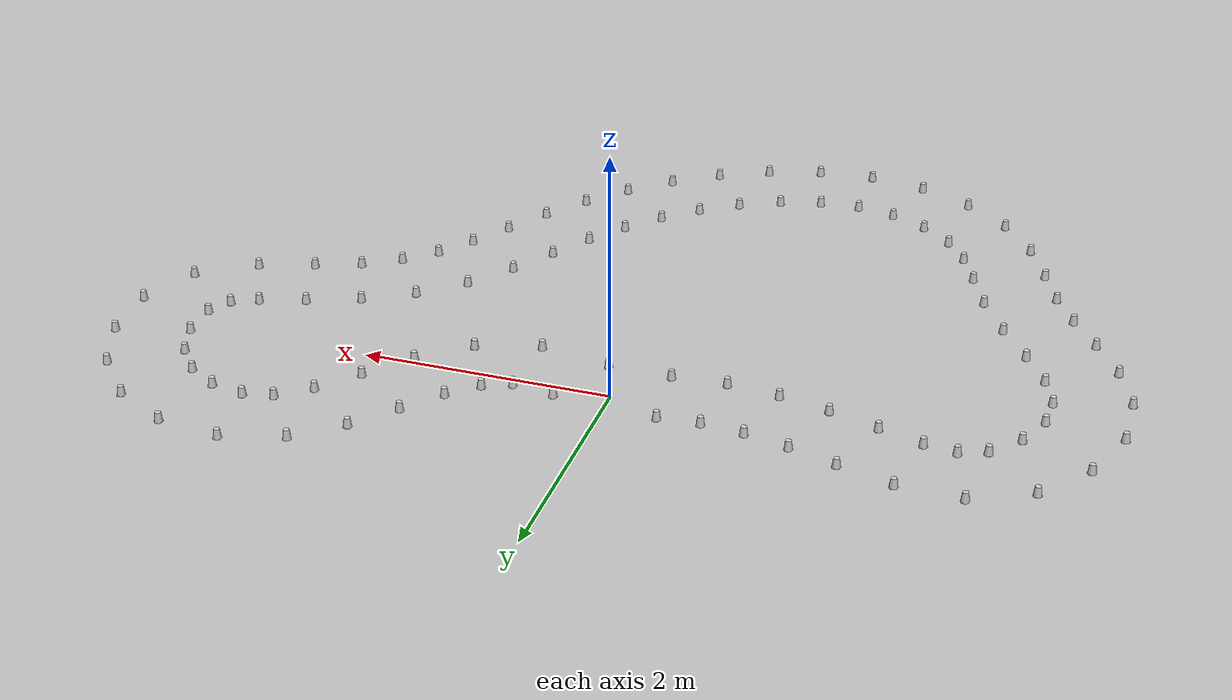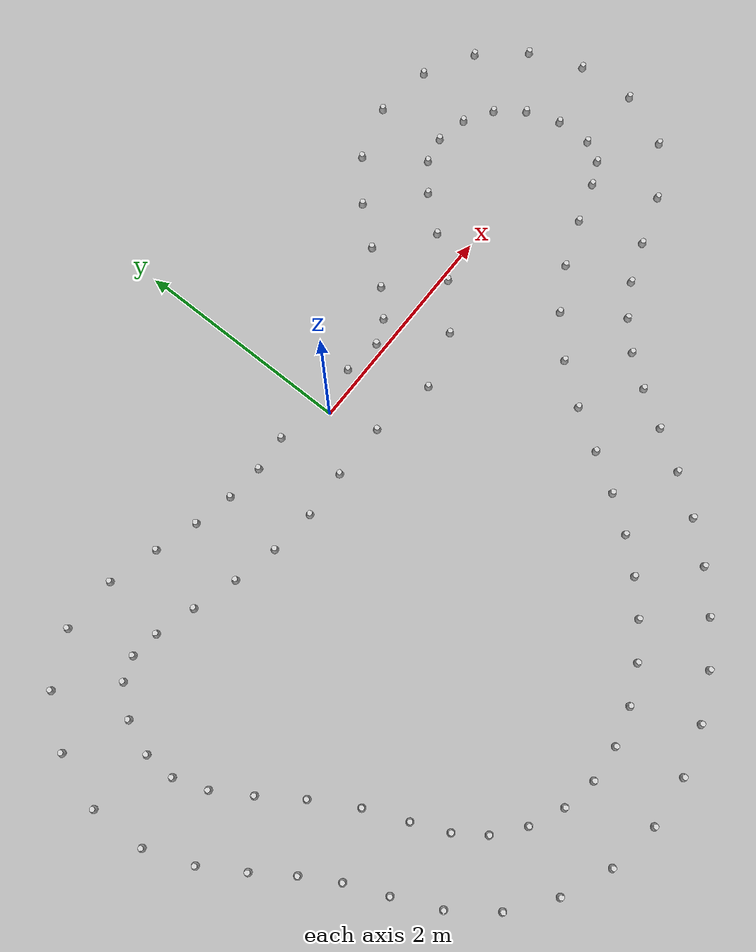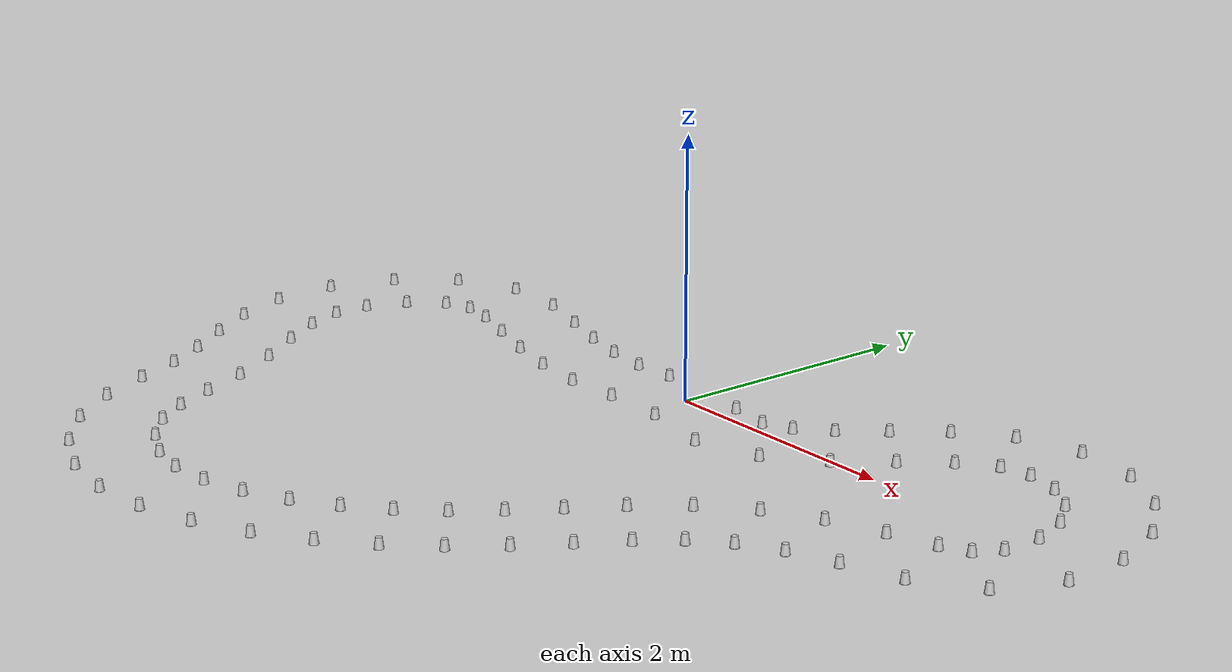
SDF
<?xml version='1.0' encoding='UTF-8'?>
<sdf version="1.4">
  <model name="some track">
    <include>
      <uri>model://cone_yellow</uri>
      <pose>0.143906361225212 -0.4063504289098119 0 0 0 0</pose>
      <name>cone_right_0</name>
    </include>
    <include>
      <uri>model://cone_yellow</uri>
      <pose>0.7252550191728679 -0.5163491527340748 0 0 0 0</pose>
      <name>cone_right_1</name>
    </include>
    <include>
      <uri>model://cone_yellow</uri>
      <pose>1.2338307954432028 -0.36205496815890725 0 0 0 0</pose>
      <name>cone_right_2</name>
    </include>
    <include>
      <uri>model://cone_yellow</uri>
      <pose>1.6132581498075276 -0.04741672740075617 0 0 0 0</pose>
      <name>cone_right_3</name>
    </include>
    <include>
      <uri>model://cone_yellow</uri>
      <pose>1.9049513947438668 0.3016925719426058 0 0 0 0</pose>
      <name>cone_right_4</name>
    </include>
    <include>
      <uri>model://cone_yellow</uri>
      <pose>2.1634687116267663 0.6070886082128363 0 0 0 0</pose>
      <name>cone_right_5</name>
    </include>
    <include>
      <uri>model://cone_yellow</uri>
      <pose>2.410032340920633 0.8006139180482856 0 0 0 0</pose>
      <name>cone_right_6</name>
    </include>
    <include>
      <uri>model://cone_yellow</uri>
      <pose>2.649172144502708 0.8504961250035453 0 0 0 0</pose>
      <name>cone_right_7</name>
    </include>
    <include>
      <uri>model://cone_yellow</uri>
      <pose>2.9284967679740856 0.7914116312535276 0 0 0 0</pose>
      <name>cone_right_8</name>
    </include>
    <include>
      <uri>model://cone_yellow</uri>
      <pose>3.1771722231018984 0.6340403422597343 0 0 0 0</pose>
      <name>cone_right_9</name>
    </include>
    <include>
      <uri>model://cone_yellow</uri>
      <pose>3.3615954567788147 0.3955062309610082 0 0 0 0</pose>
      <name>cone_right_10</name>
    </include>
    <include>
      <uri>model://cone_yellow</uri>
      <pose>3.4661773612914986 0.09336122798093767 0 0 0 0</pose>
      <name>cone_right_11</name>
    </include>
    <include>
      <uri>model://cone_yellow</uri>
      <pose>3.4672003118674075 -0.2234639536872096 0 0 0 0</pose>
      <name>cone_right_12</name>
    </include>
    <include>
      <uri>model://cone_yellow</uri>
      <pose>3.3606896926855767 -0.40970543667685266 0 0 0 0</pose>
      <name>cone_right_13</name>
    </include>
    <include>
      <uri>model://cone_yellow</uri>
      <pose>3.1545931990922456 -0.5072070508394486 0 0 0 0</pose>
      <name>cone_right_14</name>
    </include>
    <include>
      <uri>model://cone_yellow</uri>
      <pose>2.7937587495255682 -0.6244593696290632 0 0 0 0</pose>
      <name>cone_right_15</name>
    </include>
    <include>
      <uri>model://cone_yellow</uri>
      <pose>2.3768695214635205 -0.7846363516811127 0 0 0 0</pose>
      <name>cone_right_16</name>
    </include>
    <include>
      <uri>model://cone_yellow</uri>
      <pose>1.9908284437814336 -1.0091160632830367 0 0 0 0</pose>
      <name>cone_right_17</name>
    </include>
    <include>
      <uri>model://cone_yellow</uri>
      <pose>1.6565899778700544 -1.3066835321676893 0 0 0 0</pose>
      <name>cone_right_18</name>
    </include>
    <include>
      <uri>model://cone_yellow</uri>
      <pose>1.38800355440488 -1.6552293929657196 0 0 0 0</pose>
      <name>cone_right_19</name>
    </include>
    <include>
      <uri>model://cone_yellow</uri>
      <pose>1.1645142889257343 -2.009456875996536 0 0 0 0</pose>
      <name>cone_right_20</name>
    </include>
    <include>
      <uri>model://cone_yellow</uri>
      <pose>0.9538891619624759 -2.340444916902986 0 0 0 0</pose>
      <name>cone_right_21</name>
    </include>
    <include>
      <uri>model://cone_yellow</uri>
      <pose>0.7316377618229593 -2.6398098019115626 0 0 0 0</pose>
      <name>cone_right_22</name>
    </include>
    <include>
      <uri>model://cone_yellow</uri>
      <pose>0.48739442011282774 -2.910907353488579 0 0 0 0</pose>
      <name>cone_right_23</name>
    </include>
    <include>
      <uri>model://cone_yellow</uri>
      <pose>0.21654871029993203 -3.150676162661842 0 0 0 0</pose>
      <name>cone_right_24</name>
    </include>
    <include>
      <uri>model://cone_yellow</uri>
      <pose>-0.08568806253069187 -3.3561846444365813 0 0 0 0</pose>
      <name>cone_right_25</name>
    </include>
    <include>
      <uri>model://cone_yellow</uri>
      <pose>-0.4136555638080574 -3.5164730187376123 0 0 0 0</pose>
      <name>cone_right_26</name>
    </include>
    <include>
      <uri>model://cone_yellow</uri>
      <pose>-0.7515534650550733 -3.615035278396277 0 0 0 0</pose>
      <name>cone_right_27</name>
    </include>
    <include>
      <uri>model://cone_yellow</uri>
      <pose>-1.0839328186080273 -3.63875598737612 0 0 0 0</pose>
      <name>cone_right_28</name>
    </include>
    <include>
      <uri>model://cone_yellow</uri>
      <pose>-1.4008815057189692 -3.5788334672156203 0 0 0 0</pose>
      <name>cone_right_29</name>
    </include>
    <include>
      <uri>model://cone_yellow</uri>
      <pose>-1.700694883688953 -3.4366403086972683 0 0 0 0</pose>
      <name>cone_right_30</name>
    </include>
    <include>
      <uri>model://cone_yellow</uri>
      <pose>-1.9541926625433457 -3.227672322365639 0 0 0 0</pose>
      <name>cone_right_31</name>
    </include>
    <include>
      <uri>model://cone_yellow</uri>
      <pose>-2.1311866393703744 -2.974266333664663 0 0 0 0</pose>
      <name>cone_right_32</name>
    </include>
    <include>
      <uri>model://cone_yellow</uri>
      <pose>-2.270437771202141 -2.6605803760278883 0 0 0 0</pose>
      <name>cone_right_33</name>
    </include>
    <include>
      <uri>model://cone_yellow</uri>
      <pose>-2.427644862693197 -2.287369946537475 0 0 0 0</pose>
      <name>cone_right_34</name>
    </include>
    <include>
      <uri>model://cone_yellow</uri>
      <pose>-2.6515523176237874 -1.8948125807126965 0 0 0 0</pose>
      <name>cone_right_35</name>
    </include>
    <include>
      <uri>model://cone_yellow</uri>
      <pose>-2.8943281537359873 -1.5412610062955876 0 0 0 0</pose>
      <name>cone_right_36</name>
    </include>
    <include>
      <uri>model://cone_yellow</uri>
      <pose>-3.0924843285336068 -1.218891545604785 0 0 0 0</pose>
      <name>cone_right_37</name>
    </include>
    <include>
      <uri>model://cone_yellow</uri>
      <pose>-3.1986575421382333 -0.9227878667498172 0 0 0 0</pose>
      <name>cone_right_38</name>
    </include>
    <include>
      <uri>model://cone_yellow</uri>
      <pose>-3.190116393643802 -0.641374925212295 0 0 0 0</pose>
      <name>cone_right_39</name>
    </include>
    <include>
      <uri>model://cone_yellow</uri>
      <pose>-3.068446879770281 -0.34030616521404966 0 0 0 0</pose>
      <name>cone_right_40</name>
    </include>
    <include>
      <uri>model://cone_yellow</uri>
      <pose>-2.8623666007023876 -0.10291706538702769 0 0 0 0</pose>
      <name>cone_right_41</name>
    </include>
    <include>
      <uri>model://cone_yellow</uri>
      <pose>-2.647874119885948 -0.02387935176785544 0 0 0 0</pose>
      <name>cone_right_42</name>
    </include>
    <include>
      <uri>model://cone_yellow</uri>
      <pose>-2.389759630689636 -0.05866290375063865 0 0 0 0</pose>
      <name>cone_right_43</name>
    </include>
    <include>
      <uri>model://cone_yellow</uri>
      <pose>-2.0312553966691893 -0.16606004528219415 0 0 0 0</pose>
      <name>cone_right_44</name>
    </include>
    <include>
      <uri>model://cone_yellow</uri>
      <pose>-1.6298431230038475 -0.2877778763517661 0 0 0 0</pose>
      <name>cone_right_45</name>
    </include>
    <include>
      <uri>model://cone_yellow</uri>
      <pose>-1.2215776201480182 -0.38015387779295895 0 0 0 0</pose>
      <name>cone_right_46</name>
    </include>
    <include>
      <uri>model://cone_yellow</uri>
      <pose>-0.8017070528410243 -0.42393006036230135 0 0 0 0</pose>
      <name>cone_right_47</name>
    </include>
    <include>
      <uri>model://cone_yellow</uri>
      <pose>-0.3652887241377381 -0.39910881021601846 0 0 0 0</pose>
      <name>cone_right_48</name>
    </include>
    <include>
      <uri>model://cone_blue</uri>
      <pose>0.4106649472318185 0.1310878064175194 0 0 0 0</pose>
      <name>cone_left_0</name>
    </include>
    <include>
      <uri>model://cone_blue</uri>
      <pose>0.7521222093604418 0.08304900716585742 0 0 0 0</pose>
      <name>cone_left_1</name>
    </include>
    <include>
      <uri>model://cone_blue</uri>
      <pose>0.9721834028759269 0.1778900678982324 0 0 0 0</pose>
      <name>cone_left_2</name>
    </include>
    <include>
      <uri>model://cone_blue</uri>
      <pose>1.192360042598864 0.38018680783739456 0 0 0 0</pose>
      <name>cone_left_3</name>
    </include>
    <include>
      <uri>model://cone_blue</uri>
      <pose>1.4363737906431326 0.676439191587421 0 0 0 0</pose>
      <name>cone_left_4</name>
    </include>
    <include>
      <uri>model://cone_blue</uri>
      <pose>1.7148024402260857 1.0054585078129579 0 0 0 0</pose>
      <name>cone_left_5</name>
    </include>
    <include>
      <uri>model://cone_blue</uri>
      <pose>2.071559725475217 1.2960291868819578 0 0 0 0</pose>
      <name>cone_left_6</name>
    </include>
    <include>
      <uri>model://cone_blue</uri>
      <pose>2.5625085285953353 1.4442043173656343 0 0 0 0</pose>
      <name>cone_left_7</name>
    </include>
    <include>
      <uri>model://cone_blue</uri>
      <pose>3.0807660902854406 1.3717684641441559 0 0 0 0</pose>
      <name>cone_left_8</name>
    </include>
    <include>
      <uri>model://cone_blue</uri>
      <pose>3.5267912739775396 1.121653425825809 0 0 0 0</pose>
      <name>cone_left_9</name>
    </include>
    <include>
      <uri>model://cone_blue</uri>
      <pose>3.8554084907864374 0.7363121690609578 0 0 0 0</pose>
      <name>cone_left_10</name>
    </include>
    <include>
      <uri>model://cone_blue</uri>
      <pose>4.043047102926081 0.25835001907430527 0 0 0 0</pose>
      <name>cone_left_11</name>
    </include>
    <include>
      <uri>model://cone_blue</uri>
      <pose>4.066035369293651 -0.2608347176251869 0 0 0 0</pose>
      <name>cone_left_12</name>
    </include>
    <include>
      <uri>model://cone_blue</uri>
      <pose>3.8567159215179996 -0.7472820654743519 0 0 0 0</pose>
      <name>cone_left_13</name>
    </include>
    <include>
      <uri>model://cone_blue</uri>
      <pose>3.4155430587698246 -1.0474895424438424 0 0 0 0</pose>
      <name>cone_left_14</name>
    </include>
    <include>
      <uri>model://cone_blue</uri>
      <pose>2.9728582799607643 -1.1971052970553324 0 0 0 0</pose>
      <name>cone_left_15</name>
    </include>
    <include>
      <uri>model://cone_blue</uri>
      <pose>2.612459372484005 -1.33644920228913 0 0 0 0</pose>
      <name>cone_left_16</name>
    </include>
    <include>
      <uri>model://cone_blue</uri>
      <pose>2.3187542305091884 -1.5115746968032333 0 0 0 0</pose>
      <name>cone_left_17</name>
    </include>
    <include>
      <uri>model://cone_blue</uri>
      <pose>2.082363831230164 -1.7294324242950176 0 0 0 0</pose>
      <name>cone_left_18</name>
    </include>
    <include>
      <uri>model://cone_blue</uri>
      <pose>1.8775367834903642 -2.002154770563178 0 0 0 0</pose>
      <name>cone_left_19</name>
    </include>
    <include>
      <uri>model://cone_blue</uri>
      <pose>1.6755254101586907 -2.3238891166720697 0 0 0 0</pose>
      <name>cone_left_20</name>
    </include>
    <include>
      <uri>model://cone_blue</uri>
      <pose>1.4560342443820182 -2.668850635796356 0 0 0 0</pose>
      <name>cone_left_21</name>
    </include>
    <include>
      <uri>model://cone_blue</uri>
      <pose>1.2061518426757751 -3.007010546835109 0 0 0 0</pose>
      <name>cone_left_22</name>
    </include>
    <include>
      <uri>model://cone_blue</uri>
      <pose>0.9234200616024977 -3.3230743584313838 0 0 0 0</pose>
      <name>cone_left_23</name>
    </include>
    <include>
      <uri>model://cone_blue</uri>
      <pose>0.6018778000034607 -3.610590820645527 0 0 0 0</pose>
      <name>cone_left_24</name>
    </include>
    <include>
      <uri>model://cone_blue</uri>
      <pose>0.23685324554173992 -3.862116561384825 0 0 0 0</pose>
      <name>cone_left_25</name>
    </include>
    <include>
      <uri>model://cone_blue</uri>
      <pose>-0.16865248364002966 -4.064171376146304 0 0 0 0</pose>
      <name>cone_left_26</name>
    </include>
    <include>
      <uri>model://cone_blue</uri>
      <pose>-0.607019874990139 -4.197366834593382 0 0 0 0</pose>
      <name>cone_left_27</name>
    </include>
    <include>
      <uri>model://cone_blue</uri>
      <pose>-1.0698486308535091 -4.2385906609781845 0 0 0 0</pose>
      <name>cone_left_28</name>
    </include>
    <include>
      <uri>model://cone_blue</uri>
      <pose>-1.5424022419223793 -4.16190454455049 0 0 0 0</pose>
      <name>cone_left_29</name>
    </include>
    <include>
      <uri>model://cone_blue</uri>
      <pose>-1.9829917466141764 -3.9660819779891536 0 0 0 0</pose>
      <name>cone_left_30</name>
    </include>
    <include>
      <uri>model://cone_blue</uri>
      <pose>-2.358457115361984 -3.6710347612204055 0 0 0 0</pose>
      <name>cone_left_31</name>
    </include>
    <include>
      <uri>model://cone_blue</uri>
      <pose>-2.640224878813521 -3.2918825655934194 0 0 0 0</pose>
      <name>cone_left_32</name>
    </include>
    <include>
      <uri>model://cone_blue</uri>
      <pose>-2.823939995611846 -2.8921733110960997 0 0 0 0</pose>
      <name>cone_left_33</name>
    </include>
    <include>
      <uri>model://cone_blue</uri>
      <pose>-2.977008733813017 -2.528615334282496 0 0 0 0</pose>
      <name>cone_left_34</name>
    </include>
    <include>
      <uri>model://cone_blue</uri>
      <pose>-3.1604923145807717 -2.212586210042483 0 0 0 0</pose>
      <name>cone_left_35</name>
    </include>
    <include>
      <uri>model://cone_blue</uri>
      <pose>-3.387388522100049 -1.8831549564448933 0 0 0 0</pose>
      <name>cone_left_36</name>
    </include>
    <include>
      <uri>model://cone_blue</uri>
      <pose>-3.6126276673473643 -1.5179749906292073 0 0 0 0</pose>
      <name>cone_left_37</name>
    </include>
    <include>
      <uri>model://cone_blue</uri>
      <pose>-3.7744280806572914 -1.0915726023554806 0 0 0 0</pose>
      <name>cone_left_38</name>
    </include>
    <include>
      <uri>model://cone_blue</uri>
      <pose>-3.7876037903356523 -0.5865222972497671 0 0 0 0</pose>
      <name>cone_left_39</name>
    </include>
    <include>
      <uri>model://cone_blue</uri>
      <pose>-3.612420619556597 -0.08714106014842307 0 0 0 0</pose>
      <name>cone_left_40</name>
    </include>
    <include>
      <uri>model://cone_blue</uri>
      <pose>-3.2879775294375855 0.3199958539488116 0 0 0 0</pose>
      <name>cone_left_41</name>
    </include>
    <include>
      <uri>model://cone_blue</uri>
      <pose>-2.8148111069329396 0.5524296299040188 0 0 0 0</pose>
      <name>cone_left_42</name>
    </include>
    <include>
      <uri>model://cone_blue</uri>
      <pose>-2.2970699853474517 0.5341343884550024 0 0 0 0</pose>
      <name>cone_left_43</name>
    </include>
    <include>
      <uri>model://cone_blue</uri>
      <pose>-1.8493355294055394 0.40569616316225804 0 0 0 0</pose>
      <name>cone_left_44</name>
    </include>
    <include>
      <uri>model://cone_blue</uri>
      <pose>-1.4630051907899537 0.2885597888884923 0 0 0 0</pose>
      <name>cone_left_45</name>
    </include>
    <include>
      <uri>model://cone_blue</uri>
      <pose>-1.1041168270009076 0.20823626664629966 0 0 0 0</pose>
      <name>cone_left_46</name>
    </include>
    <include>
      <uri>model://cone_blue</uri>
      <pose>-0.7626547426504883 0.17479768834221804 0 0 0 0</pose>
      <name>cone_left_47</name>
    </include>
    <include>
      <uri>model://cone_blue</uri>
      <pose>-0.42877160039904777 0.19752334146673428 0 0 0 0</pose>
      <name>cone_left_48</name>
    </include>

  </model>
</sdf>

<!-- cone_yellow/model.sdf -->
<sdf version='1.4'>
  <model name="cone_yellow">
    <link name="link">
    <collision name="collision"><geometry><box><size> 0.05 0.05 0.01</size>
             </box></geometry></collision>
      <visual name="visual">
        <geometry>
          <mesh>
            <uri>model://cup.dae</uri>
            <scale>1 1 1</scale>
          </mesh>
        </geometry>
        <material>
            <script>
              <uri>model://cone_yellow/materials/scripts</uri>
              <uri>model://cone_yellow/materials/textures</uri>
              <name>cone_yellow/Image</name>
            </script>
        </material>
      </visual>
    </link>
  </model>
</sdf>

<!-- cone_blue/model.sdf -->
<sdf version='1.4'>
  <model name="cone_blue">
    <link name="link">
    <collision name="collision"><geometry><box><size> 0.05 0.05 0.01</size>
             </box></geometry></collision>
      <visual name="visual">
        <geometry>
          <mesh>
            <uri>model://cup.dae</uri>
            <scale>1 1 1</scale>
          </mesh>
        </geometry>
        <material>
            <script>
              <uri>model://cone_blue/materials/scripts</uri>
              <uri>model://cone_blue/materials/textures</uri>
              <name>cone_blue/Image</name>
            </script>
        </material>
      </visual>
    </link>
  </model>
</sdf>
